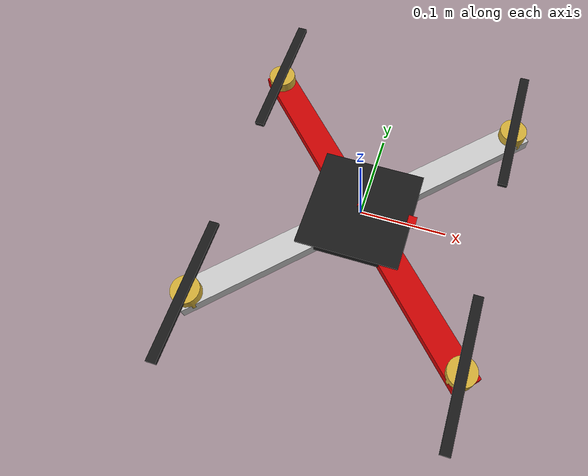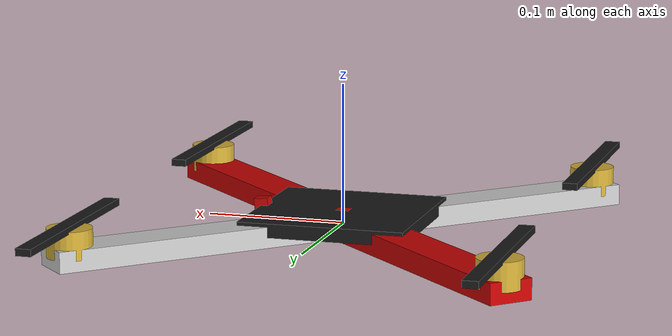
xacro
<?xml version="1.0"?>
<robot xmlns:xacro="http://www.ros.org/wiki/xacro" name="Kwad">

	<xacro:include filename="$(find robotuna_ekf_simulator)/urdf/material.xacro" />
	<xacro:include filename="$(find robotuna_ekf_simulator)/urdf/macros.xacro"/>
	<xacro:include filename="$(find robotuna_ekf_simulator)/urdf/Kwad.gazebo" />
	<!-- Constants -->
	<xacro:property name="pi_value" value="3.14159263" />

	<!-- Dimensions for cross beam arms -->
	<xacro:property name="width" value="0.0315" />
	<xacro:property name="length" value="0.45" />
	<xacro:property name="height" value="0.015" />
	<!-- Mass of cross beam arms -->
	<xacro:property name="mass_fr" value="0.8" />

	<!-- Dimension of propellers -->
	<xacro:property name="radiusp" value="0.20" />
	<!-- Mass of propellers -->
	<xacro:property name="mass_pr" value="0.0055" />
	<!-- Location of propellers -->
	<xacro:property name="prop_loc" value="0.15909" />

		<!-- Links -->

	<!-- Base link -->
	<link name="base_link"/>

<!-- Quadcopter frame links -->
	<!-- First arm -->
	<xacro:boxLink
		name="arm_1"
		mass="${mass_fr}"
		x_dim="${width}" y_dim="${length}" z_dim="${height}"
		y="${pi_value/4}"
		color="red"
	/>

	<!-- Second arm -->
	<xacro:boxLink
		name="arm_2"
		mass="${mass_fr}"
		x_dim="${width}" y_dim="${length}" z_dim="${height}"
		y="${-pi_value/4}"
		color="white"
	/>

	<!-- Electronics mounting plate -->
	<xacro:boxLink
		name="plate1"
		mass="0.01"
		x_dim="0.12" y_dim="0.12" z_dim="0.01"
		color="black"
	/>
<!-- Motor links -->
	<!-- Front right motor -->
	<xacro:cylinderLink
		name="cyl_fr"
		mass="0.01"
		radius="0.016"
		height="0.02"
		color="golden"
	/>

	<!-- Back left motor -->
	<xacro:cylinderLink
		name="cyl_bl"
		mass="0.01"
		radius="0.016"
		height="0.02"
		color="golden"
	/>

	<!-- Front left motor -->
	<xacro:cylinderLink
		name="cyl_fl"
		mass="0.01"
		radius="0.016"
		height="0.02"
		color="golden"
	/>

	<!-- Back right motor -->
	<xacro:cylinderLink
		name="cyl_br"
		mass="0.01"
		radius="0.016"
		height="0.02"
		color="golden"
	/>

<!-- Propeller links -->
	<!-- Propellers of the quad: fr, fl, br, bl -->
	<!-- For the propellers we don't use the boxLink macros, because we need to make their
		 inertials "flat" (no inertia around x or y axis). Thus we construct them the
		 traditional way. -->

	<xacro:boxLink_customInertia
		name="prop_front_right"
		mass="${mass_pr}"
		x_dim="${0.03302/3}" y_dim="${radiusp*0.8}" z_dim="0.005"
		ix="0" iy="0" iz="${4.42448e-5}"
		color="black"
	/>

	<xacro:boxLink_customInertia
		name="prop_front_left"
		mass="${mass_pr}"
		x_dim="${0.03302/3}" y_dim="${radiusp*0.8}" z_dim="0.005"
		ix="0" iy="0" iz="${4.42448e-5}"
		color="black"
	/>

	<xacro:boxLink_customInertia
		name="prop_back_right"
		mass="${mass_pr}"
		x_dim="${0.03302/3}" y_dim="${radiusp*0.8}" z_dim="0.005"
		ix="0" iy="0" iz="${4.42448e-5}"
		color="black"
	/>

	<xacro:boxLink_customInertia
		name="prop_back_left"
		mass="${mass_pr}"
		x_dim="${0.03302/3}" y_dim="${radiusp*0.8}" z_dim="0.005"
		ix="0" iy="0" iz="${4.42448e-5}"
		color="black"
	/>
<!-- Sensor links -->
	<!-- Camera -->
	<xacro:boxLink
		name="camera_link"
		mass="${1e-5}"
		x_dim="0.01" y_dim="0.01" z_dim="0.01"
		color="red"
	/>

	<!-- IMU -->
	<xacro:boxLink
		name="imu_link"
		mass="${1e-5}"
		x_dim="0.01" y_dim="0.01" z_dim="0.01"
		color="red"
	/>

		<!-- Joints -->

	<joint name="base_joint" type="fixed">
		<parent link="base_link" />
		<child link="arm_1" />
		<origin xyz="0 0 0" rpy="0 0 0" />
  	</joint>

	<!-- Define the joint between the arms of the frame -->
	<joint name="center" type="fixed">
		<parent link="arm_1" />
		<child link="arm_2" />

		<origin xyz="0 0 0" rpy="0 0 0"/>
		<axis xyz="0 0 1" />
	</joint>

	<!-- Define joint between plate1 and frame -->
	<joint name="joint_plate1_frame" type="fixed">
		<parent link="arm_2" />
		<child link="plate1" />
		<origin xyz="${0} ${0} 0.005" rpy="0 0 0" />
		<axis xyz="0 0 1" />
	</joint>
<!-- Propeller joints -->
	<!-- Define joint between prop fr and frame -->
	<joint name="joint_front_left_prop" type="continuous">
		<parent link="arm_2" />
		<child link="prop_front_left" />
		<origin xyz="${prop_loc - 0.01} ${prop_loc - 0.01} 0.021" rpy="0 0 0"/>
		<axis xyz="0 0 1" />
	</joint>

	<!-- Define joint between prop fl and frame -->
	<joint name="joint_back_left_prop" type="continuous">
		<parent link="arm_1" />
		<child link="prop_back_left" />
		<origin xyz="${-prop_loc + 0.01} ${prop_loc - 0.01} 0.021" rpy="0 0 0" />
		<axis xyz="0 0 1" />
	</joint>

<!-- Define joint between prop br and frame -->
	<joint name="joint_front_right_prop" type="continuous">
		<parent link="arm_1" />
		<child link="prop_front_right" />
		<origin xyz="${prop_loc - 0.01} ${-prop_loc + 0.01} 0.021" rpy="0 0 0" />
		<axis xyz="0 0 1" />
	</joint>

<!-- Define joint between prop br and frame -->
	<joint name="joint_back_right_prop" type="continuous">
		<parent link="arm_2" />
		<child link="prop_back_right" />
		<origin xyz="${-prop_loc + 0.01} ${-prop_loc + 0.01} 0.021" rpy="0 0 0" />
		<axis xyz="0 0 1" />
	</joint>
<!-- Motor cylinder joints -->
<!-- Define joint between cyl_fr and frame -->
	<joint name="joint_cyl_fl_frame" type="fixed">
		<parent link="arm_2" />
		<child link="cyl_fl" />
		<origin xyz="${prop_loc - 0.01} ${prop_loc - 0.01} 0.01" rpy="0 0 0" />
		<axis xyz="0 0 1" />
	</joint>

<!-- Define joint between cyl_bl and frame -->
	<joint name="joint_cyl_br_frame" type="fixed">
		<parent link="arm_2" />
		<child link="cyl_br" />
		<origin xyz="${-prop_loc + 0.01} ${-prop_loc + 0.01} 0.01" rpy="0 0 0" />
		<axis xyz="0 0 1" />
	</joint>

<!-- Define joint between cyl_fl and frame -->
	<joint name="joint_cyl_bl_frame" type="fixed">
		<parent link="arm_1" />
		<child link="cyl_bl" />
		<origin xyz="${-prop_loc + 0.01} ${prop_loc - 0.01} 0.01" rpy="0 0 0" />
		<axis xyz="0 0 1" />
	</joint>

<!-- Define joint between cyl_br and frame -->
	<joint name="joint_cyl_fr_frame" type="fixed">
		<parent link="arm_1" />
		<child link="cyl_fr" />
		<origin xyz="${prop_loc - 0.01} ${-prop_loc + 0.01} 0.01" rpy="0 0 0" />
		<axis xyz="0 0 1" />
	</joint>
<!-- Define joint between camera and frame -->
	<joint name="joint_camera_frame" type="fixed">
		<parent link="plate1" />
		<child link="camera_link" />
		<origin xyz="0.06 0 0.005" rpy="0 0.1 0" />
		<axis xyz="0 0 1" />
	</joint>
	<!-- Define joint between camera and frame -->
	<joint name="joint_imu_frame" type="fixed">
		<parent link="plate1" />
		<child link="imu_link" />
		<origin xyz="0 0 0" rpy="0 0 0" />
	</joint>

	<!-- Transmissions -->

<!-- Add transmission elements -->
	<transmission name="front_right_motor_joint" >
		<type>transmission_interface/SimpleTransmission</type>
		<joint name="joint_front_right_prop">
			<hardwareInterface>hardware_interface/VelocityJointInterface</hardwareInterface>
		</joint>
		<actuator name="BLDC_motor1">
			<hardwareInterface>hardware_interface/VelocityJointInterface</hardwareInterface>
			<mechanicalReduction>1</mechanicalReduction>
		</actuator>
	</transmission>

	<transmission name="front_left_motor_joint" >
		<type>transmission_interface/SimpleTransmission</type>
		<joint name="joint_front_left_prop">
			<hardwareInterface>hardware_interface/VelocityJointInterface</hardwareInterface>
		</joint>
		<actuator name="BLDC_motor2">
			<hardwareInterface>hardware_interface/VelocityJointInterface</hardwareInterface>
			<mechanicalReduction>1</mechanicalReduction>
		</actuator>
	</transmission>

	<transmission name="back_right_motor_joint" >
		<type>transmission_interface/SimpleTransmission</type>
		<joint name="joint_back_right_prop">
			<hardwareInterface>hardware_interface/VelocityJointInterface</hardwareInterface>
		</joint>
		<actuator name="BLDC_motor3">
			<hardwareInterface>hardware_interface/VelocityJointInterface</hardwareInterface>
			<mechanicalReduction>1</mechanicalReduction>
		</actuator>
	</transmission>

	<transmission name="back_left_motor_joint" >
		<type>transmission_interface/SimpleTransmission</type>
		<joint name="joint_back_left_prop">
			<hardwareInterface>hardware_interface/VelocityJointInterface</hardwareInterface>
		</joint>
		<actuator name="BLDC_motor4">
			<hardwareInterface>hardware_interface/VelocityJointInterface</hardwareInterface>
			<mechanicalReduction>1</mechanicalReduction>
		</actuator>
	</transmission>

</robot>

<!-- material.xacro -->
<robot xmlns:xacro="http://www.ros.org/wiki/xacro">
	<material name="white">
		<color rgba="0.8 0.8 0.8 1" />
	</material>

	<material name="black">
		<color rgba="0.1 0.1 0.1 1" />
	</material>

	<material name="red">
		<color rgba="0.8 0.01 0.01 1" />
	</material>

	<material name="blue">
		<color rgba="0.01 0.01 0.8 1" />
	</material>

	<material name="golden">
		<color rgba="${212/255} ${175/255} ${55/255} 1" />
	</material>

</robot>

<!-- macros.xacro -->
<robot xmlns:xacro="http://www.ros.org/wiki/xacro">

  <!-- Fill-in-the-blank inertia diagonal matrix -->
	<xacro:macro name="default_inertia" params="mass ix iy iz" >
    <inertia  ixx="${ix}" ixy = "0" ixz = "0"
              iyy="${iy}" iyz = "0"
              izz="${iz}"
    />
	</xacro:macro>

  <xacro:macro name="cylinder_inertia" params="mass r h">
    <inertia  ixx="${mass*(3*r*r+h*h)/12}" ixy = "0" ixz = "0"
              iyy="${mass*(3*r*r+h*h)/12}" iyz = "0"
              izz="${mass*r*r/2}"
    />
  </xacro:macro>

  <xacro:macro name="box_inertia" params="mass x y z">
    <inertia  ixx="${mass*(y*y+z*z)/12}" ixy = "0" ixz = "0"
              iyy="${mass*(x*x+z*z)/12}" iyz = "0"
              izz="${mass*(x*x+y*y)/12}"
    />
  </xacro:macro>

  <xacro:macro name="sphere_inertia" params="mass r">
    <inertia  ixx="${2*mass*r*r/5}" ixy = "0" ixz = "0"
              iyy="${2*mass*r*r/5}" iyz = "0"
              izz="${2*mass*r*r/5}"
    />
  </xacro:macro>

  <xacro:macro name="boxLink" params="name mass x_dim y_dim z_dim r:=0 p:=0 y:=0 color:=grey">
    <link name="${name}">
      <inertial>
        <origin xyz="0 0 0" rpy="${r} ${p} ${y}"/>
        <mass value="${mass}"/>
        <xacro:box_inertia mass="${mass}" x="${x_dim}" y="${y_dim}" z="${z_dim}"/>
      </inertial>

      <collision>
        <origin xyz="0 0 0" rpy="${r} ${p} ${y}" />
        <geometry>
          <box size="${x_dim} ${y_dim} ${z_dim}" />
        </geometry>
      </collision>

      <visual>
        <origin xyz="0 0 0" rpy="${r} ${p} ${y}"/>
        <geometry>
          <box size="${x_dim} ${y_dim} ${z_dim}"/>
        </geometry>
        <material name="${color}"/>
      </visual>
    </link>
  </xacro:macro>

  <xacro:macro name="boxLink_customInertia"
    params="name mass
            x_dim y_dim z_dim
            ix iy iz
            r:=0 p:=0 y:=0
            color:=grey"
  >
    <link name="${name}">
      <inertial>
        <origin xyz="0 0 0" rpy="${r} ${p} ${y}"/>
        <mass value="${mass}"/>
        <xacro:default_inertia mass="${mass}" ix="${ix}" iy="${iy}" iz="${iz}"/>
      </inertial>

      <collision>
        <origin xyz="0 0 0" rpy="${r} ${p} ${y}" />
        <geometry>
          <box size="${x_dim} ${y_dim} ${z_dim}" />
        </geometry>
      </collision>

      <visual>
        <origin xyz="0 0 0" rpy="${r} ${p} ${y}"/>
        <geometry>
          <box size="${x_dim} ${y_dim} ${z_dim}"/>
        </geometry>
        <material name="${color}"/>
      </visual>
    </link>
  </xacro:macro>

  <xacro:macro name="cylinderLink" params="name mass radius height r:=0 p:=0 y:=0 color:=grey">
    <link name="${name}">
      <inertial>
        <origin xyz="0 0 0" rpy="${r} ${p} ${y}"/>
        <mass value="${mass}"/>
        <xacro:cylinder_inertia mass="${mass}" r="${radius}" h="${height}"/>
      </inertial>

      <collision>
        <origin xyz="0 0 0" rpy="${r} ${p} ${y}"/>
        <geometry>
          <cylinder radius="${radius}" length="${height}"/>
        </geometry>
      </collision>

      <visual>
        <origin xyz="0 0 0" rpy="${r} ${p} ${y}"/>
        <geometry>
          <cylinder radius="${radius}" length="${height}"/>
        </geometry>
        <material name="${color}"/>
      </visual>
    </link>
  </xacro:macro>

  <xacro:macro name="sphereLink" params="name mass r color:=grey">
    <link name="${name}">
      <inertial>
        <origin xyz="0 0 0" rpy="0 0 0" />
        <mass value="${mass}" />
        <xacro:sphere_inertia mass="${mass}" r="${r}" />
      </inertial>

      <collision>
        <origin xyz="0 0 0" rpy="0 0 0" />
        <geometry>
          <sphere radius="${r}" />
        </geometry>
      </collision>

      <visual>
        <origin xyz="0 0 0" rpy="0 0 0"/>
        <geometry>
          <sphere radius="${r}"/>
        </geometry>
        <material name="${color}"/>
      </visual>
    </link>
  </xacro:macro>
</robot>
